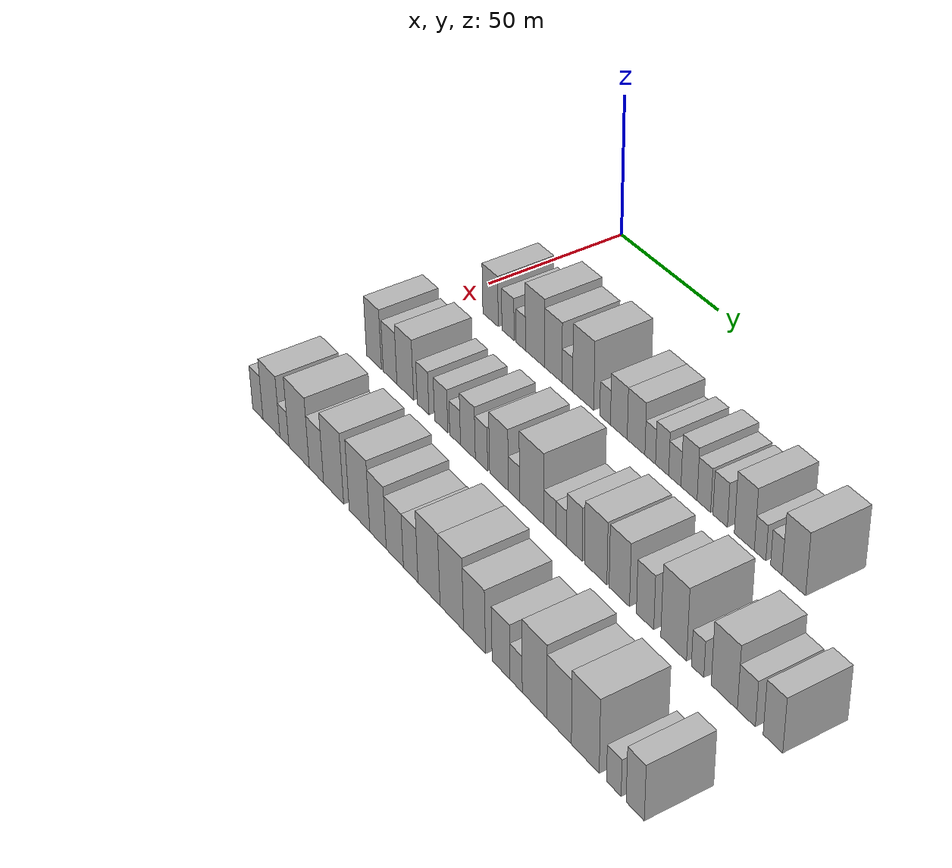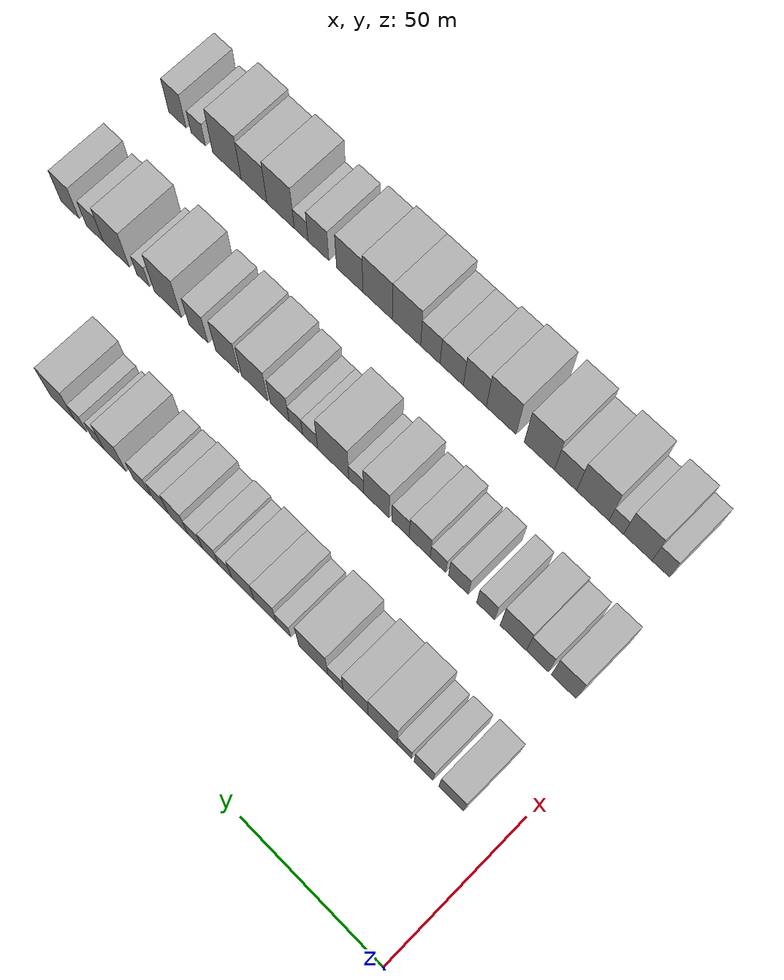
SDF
<sdf version="1.6">
 <world name="default">
  <model name="building_47">
   <static>1</static>
   <pose>50.0000 16.3167 0 0.000000 0.000000 0.000000</pose>
   <link name="link">
    <pose>0 0 9.00 0 0 0</pose>
    <collision name="collision"><geometry><box><size>20.0000 8.5062 18.0000</size></box></geometry></collision>
    <visual name="visual">
     <cast_shadows>0</cast_shadows>
     <geometry><box><size>20.0000 8.5062 18.0000</size></box></geometry>
     <material>
      <script>
       <uri>model://HANNAS_wall/materials/scripts</uri>
       <uri>model://HANNAS_wall/materials/textures</uri>
       <name>vrc/HANNAS_wall</name>
      </script>
     </material>
    </visual>
   </link>
  </model>
  <model name="building_48">
   <static>1</static>
   <pose>50.0000 25.8749 0 0.000000 0.000000 0.000000</pose>
   <link name="link">
    <pose>0 0 7.50 0 0 0</pose>
    <collision name="collision"><geometry><box><size>20.0000 6.6102 15.0000</size></box></geometry></collision>
    <visual name="visual">
     <cast_shadows>0</cast_shadows>
     <geometry><box><size>20.0000 6.6102 15.0000</size></box></geometry>
     <material>
      <script>
       <uri>model://HANNAS_wall/materials/scripts</uri>
       <uri>model://HANNAS_wall/materials/textures</uri>
       <name>vrc/HANNAS_wall</name>
      </script>
     </material>
    </visual>
   </link>
  </model>
  <model name="building_49">
   <static>1</static>
   <pose>50.0000 32.7128 0 0.000000 0.000000 0.000000</pose>
   <link name="link">
    <pose>0 0 6.00 0 0 0</pose>
    <collision name="collision"><geometry><box><size>20.0000 5.0658 12.0000</size></box></geometry></collision>
    <visual name="visual">
     <cast_shadows>0</cast_shadows>
     <geometry><box><size>20.0000 5.0658 12.0000</size></box></geometry>
     <material>
      <script>
       <uri>model://HANNAS_wall/materials/scripts</uri>
       <uri>model://HANNAS_wall/materials/textures</uri>
       <name>vrc/HANNAS_wall</name>
      </script>
     </material>
    </visual>
   </link>
  </model>
  <model name="building_50">
   <static>1</static>
   <pose>50.0000 40.3351 0 0.000000 0.000000 0.000000</pose>
   <link name="link">
    <pose>0 0 12.00 0 0 0</pose>
    <collision name="collision"><geometry><box><size>20.0000 10.1788 24.0000</size></box></geometry></collision>
    <visual name="visual">
     <cast_shadows>0</cast_shadows>
     <geometry><box><size>20.0000 10.1788 24.0000</size></box></geometry>
     <material>
      <script>
       <uri>model://HANNAS_wall/materials/scripts</uri>
       <uri>model://HANNAS_wall/materials/textures</uri>
       <name>vrc/HANNAS_wall</name>
      </script>
     </material>
    </visual>
   </link>
  </model>
  <model name="building_51">
   <static>1</static>
   <pose>50.0000 49.9191 0 0.000000 0.000000 0.000000</pose>
   <link name="link">
    <pose>0 0 10.50 0 0 0</pose>
    <collision name="collision"><geometry><box><size>20.0000 8.9892 21.0000</size></box></geometry></collision>
    <visual name="visual">
     <cast_shadows>0</cast_shadows>
     <geometry><box><size>20.0000 8.9892 21.0000</size></box></geometry>
     <material>
      <script>
       <uri>model://HANNAS_wall/materials/scripts</uri>
       <uri>model://HANNAS_wall/materials/textures</uri>
       <name>vrc/HANNAS_wall</name>
      </script>
     </material>
    </visual>
   </link>
  </model>
  <model name="building_52">
   <static>1</static>
   <pose>50.0000 57.1125 0 0.000000 0.000000 0.000000</pose>
   <link name="link">
    <pose>0 0 6.00 0 0 0</pose>
    <collision name="collision"><geometry><box><size>20.0000 5.3975 12.0000</size></box></geometry></collision>
    <visual name="visual">
     <cast_shadows>0</cast_shadows>
     <geometry><box><size>20.0000 5.3975 12.0000</size></box></geometry>
     <material>
      <script>
       <uri>model://HANNAS_wall/materials/scripts</uri>
       <uri>model://HANNAS_wall/materials/textures</uri>
       <name>vrc/HANNAS_wall</name>
      </script>
     </material>
    </visual>
   </link>
  </model>
  <model name="building_53">
   <static>1</static>
   <pose>50.0000 65.1213 0 0.000000 0.000000 0.000000</pose>
   <link name="link">
    <pose>0 0 12.00 0 0 0</pose>
    <collision name="collision"><geometry><box><size>20.0000 10.6201 24.0000</size></box></geometry></collision>
    <visual name="visual">
     <cast_shadows>0</cast_shadows>
     <geometry><box><size>20.0000 10.6201 24.0000</size></box></geometry>
     <material>
      <script>
       <uri>model://HANNAS_wall/materials/scripts</uri>
       <uri>model://HANNAS_wall/materials/textures</uri>
       <name>vrc/HANNAS_wall</name>
      </script>
     </material>
    </visual>
   </link>
  </model>
  <model name="building_54">
   <static>1</static>
   <pose>50.0000 76.0297 0 0.000000 0.000000 0.000000</pose>
   <link name="link">
    <pose>0 0 6.00 0 0 0</pose>
    <collision name="collision"><geometry><box><size>20.0000 5.1967 12.0000</size></box></geometry></collision>
    <visual name="visual">
     <cast_shadows>0</cast_shadows>
     <geometry><box><size>20.0000 5.1967 12.0000</size></box></geometry>
     <material>
      <script>
       <uri>model://HANNAS_wall/materials/scripts</uri>
       <uri>model://HANNAS_wall/materials/textures</uri>
       <name>vrc/HANNAS_wall</name>
      </script>
     </material>
    </visual>
   </link>
  </model>
  <model name="building_55">
   <static>1</static>
   <pose>50.0000 82.6907 0 0.000000 0.000000 0.000000</pose>
   <link name="link">
    <pose>0 0 9.00 0 0 0</pose>
    <collision name="collision"><geometry><box><size>20.0000 8.1251 18.0000</size></box></geometry></collision>
    <visual name="visual">
     <cast_shadows>0</cast_shadows>
     <geometry><box><size>20.0000 8.1251 18.0000</size></box></geometry>
     <material>
      <script>
       <uri>model://HANNAS_wall/materials/scripts</uri>
       <uri>model://HANNAS_wall/materials/textures</uri>
       <name>vrc/HANNAS_wall</name>
      </script>
     </material>
    </visual>
   </link>
  </model>
  <model name="building_56">
   <static>1</static>
   <pose>50.0000 90.9784 0 0.000000 0.000000 0.000000</pose>
   <link name="link">
    <pose>0 0 9.00 0 0 0</pose>
    <collision name="collision"><geometry><box><size>20.0000 8.4503 18.0000</size></box></geometry></collision>
    <visual name="visual">
     <cast_shadows>0</cast_shadows>
     <geometry><box><size>20.0000 8.4503 18.0000</size></box></geometry>
     <material>
      <script>
       <uri>model://HANNAS_wall/materials/scripts</uri>
       <uri>model://HANNAS_wall/materials/textures</uri>
       <name>vrc/HANNAS_wall</name>
      </script>
     </material>
    </visual>
   </link>
  </model>
  <model name="building_57">
   <static>1</static>
   <pose>50.0000 97.7002 0 0.000000 0.000000 0.000000</pose>
   <link name="link">
    <pose>0 0 6.00 0 0 0</pose>
    <collision name="collision"><geometry><box><size>20.0000 4.9932 12.0000</size></box></geometry></collision>
    <visual name="visual">
     <cast_shadows>0</cast_shadows>
     <geometry><box><size>20.0000 4.9932 12.0000</size></box></geometry>
     <material>
      <script>
       <uri>model://HANNAS_wall/materials/scripts</uri>
       <uri>model://HANNAS_wall/materials/textures</uri>
       <name>vrc/HANNAS_wall</name>
      </script>
     </material>
    </visual>
   </link>
  </model>
  <model name="building_58">
   <static>1</static>
   <pose>50.0000 103.2373 0 0.000000 0.000000 0.000000</pose>
   <link name="link">
    <pose>0 0 7.50 0 0 0</pose>
    <collision name="collision"><geometry><box><size>20.0000 6.0810 15.0000</size></box></geometry></collision>
    <visual name="visual">
     <cast_shadows>0</cast_shadows>
     <geometry><box><size>20.0000 6.0810 15.0000</size></box></geometry>
     <material>
      <script>
       <uri>model://HANNAS_wall/materials/scripts</uri>
       <uri>model://HANNAS_wall/materials/textures</uri>
       <name>vrc/HANNAS_wall</name>
      </script>
     </material>
    </visual>
   </link>
  </model>
  <model name="building_59">
   <static>1</static>
   <pose>50.0000 109.1245 0 0.000000 0.000000 0.000000</pose>
   <link name="link">
    <pose>0 0 6.00 0 0 0</pose>
    <collision name="collision"><geometry><box><size>20.0000 5.6933 12.0000</size></box></geometry></collision>
    <visual name="visual">
     <cast_shadows>0</cast_shadows>
     <geometry><box><size>20.0000 5.6933 12.0000</size></box></geometry>
     <material>
      <script>
       <uri>model://HANNAS_wall/materials/scripts</uri>
       <uri>model://HANNAS_wall/materials/textures</uri>
       <name>vrc/HANNAS_wall</name>
      </script>
     </material>
    </visual>
   </link>
  </model>
  <model name="building_60">
   <static>1</static>
   <pose>50.0000 115.6176 0 0.000000 0.000000 0.000000</pose>
   <link name="link">
    <pose>0 0 9.00 0 0 0</pose>
    <collision name="collision"><geometry><box><size>20.0000 7.2929 18.0000</size></box></geometry></collision>
    <visual name="visual">
     <cast_shadows>0</cast_shadows>
     <geometry><box><size>20.0000 7.2929 18.0000</size></box></geometry>
     <material>
      <script>
       <uri>model://HANNAS_wall/materials/scripts</uri>
       <uri>model://HANNAS_wall/materials/textures</uri>
       <name>vrc/HANNAS_wall</name>
      </script>
     </material>
    </visual>
   </link>
  </model>
  <model name="building_61">
   <static>1</static>
   <pose>50.0000 122.2916 0 0.000000 0.000000 0.000000</pose>
   <link name="link">
    <pose>0 0 7.50 0 0 0</pose>
    <collision name="collision"><geometry><box><size>20.0000 6.0552 15.0000</size></box></geometry></collision>
    <visual name="visual">
     <cast_shadows>0</cast_shadows>
     <geometry><box><size>20.0000 6.0552 15.0000</size></box></geometry>
     <material>
      <script>
       <uri>model://HANNAS_wall/materials/scripts</uri>
       <uri>model://HANNAS_wall/materials/textures</uri>
       <name>vrc/HANNAS_wall</name>
      </script>
     </material>
    </visual>
   </link>
  </model>
  <model name="building_62">
   <static>1</static>
   <pose>50.0000 129.5184 0 0.000000 0.000000 0.000000</pose>
   <link name="link">
    <pose>0 0 7.50 0 0 0</pose>
    <collision name="collision"><geometry><box><size>20.0000 6.3985 15.0000</size></box></geometry></collision>
    <visual name="visual">
     <cast_shadows>0</cast_shadows>
     <geometry><box><size>20.0000 6.3985 15.0000</size></box></geometry>
     <material>
      <script>
       <uri>model://HANNAS_wall/materials/scripts</uri>
       <uri>model://HANNAS_wall/materials/textures</uri>
       <name>vrc/HANNAS_wall</name>
      </script>
     </material>
    </visual>
   </link>
  </model>
  <model name="building_63">
   <static>1</static>
   <pose>50.0000 140.0337 0 0.000000 0.000000 0.000000</pose>
   <link name="link">
    <pose>0 0 10.50 0 0 0</pose>
    <collision name="collision"><geometry><box><size>20.0000 8.6320 21.0000</size></box></geometry></collision>
    <visual name="visual">
     <cast_shadows>0</cast_shadows>
     <geometry><box><size>20.0000 8.6320 21.0000</size></box></geometry>
     <material>
      <script>
       <uri>model://HANNAS_wall/materials/scripts</uri>
       <uri>model://HANNAS_wall/materials/textures</uri>
       <name>vrc/HANNAS_wall</name>
      </script>
     </material>
    </visual>
   </link>
  </model>
  <model name="building_64">
   <static>1</static>
   <pose>50.0000 146.7774 0 0.000000 0.000000 0.000000</pose>
   <link name="link">
    <pose>0 0 6.00 0 0 0</pose>
    <collision name="collision"><geometry><box><size>20.0000 4.8555 12.0000</size></box></geometry></collision>
    <visual name="visual">
     <cast_shadows>0</cast_shadows>
     <geometry><box><size>20.0000 4.8555 12.0000</size></box></geometry>
     <material>
      <script>
       <uri>model://HANNAS_wall/materials/scripts</uri>
       <uri>model://HANNAS_wall/materials/textures</uri>
       <name>vrc/HANNAS_wall</name>
      </script>
     </material>
    </visual>
   </link>
  </model>
  <model name="building_65">
   <static>1</static>
   <pose>50.0000 153.6063 0 0.000000 0.000000 0.000000</pose>
   <link name="link">
    <pose>0 0 6.00 0 0 0</pose>
    <collision name="collision"><geometry><box><size>20.0000 4.8023 12.0000</size></box></geometry></collision>
    <visual name="visual">
     <cast_shadows>0</cast_shadows>
     <geometry><box><size>20.0000 4.8023 12.0000</size></box></geometry>
     <material>
      <script>
       <uri>model://HANNAS_wall/materials/scripts</uri>
       <uri>model://HANNAS_wall/materials/textures</uri>
       <name>vrc/HANNAS_wall</name>
      </script>
     </material>
    </visual>
   </link>
  </model>
  <model name="building_66">
   <static>1</static>
   <pose>50.0000 160.8620 0 0.000000 0.000000 0.000000</pose>
   <link name="link">
    <pose>0 0 10.50 0 0 0</pose>
    <collision name="collision"><geometry><box><size>20.0000 9.7091 21.0000</size></box></geometry></collision>
    <visual name="visual">
     <cast_shadows>0</cast_shadows>
     <geometry><box><size>20.0000 9.7091 21.0000</size></box></geometry>
     <material>
      <script>
       <uri>model://HANNAS_wall/materials/scripts</uri>
       <uri>model://HANNAS_wall/materials/textures</uri>
       <name>vrc/HANNAS_wall</name>
      </script>
     </material>
    </visual>
   </link>
  </model>
  <model name="building_123">
   <static>1</static>
   <pose>90.0000 15.6042 0 0.000000 0.000000 0.000000</pose>
   <link name="link">
    <pose>0 0 10.50 0 0 0</pose>
    <collision name="collision"><geometry><box><size>20.0000 8.5615 21.0000</size></box></geometry></collision>
    <visual name="visual">
     <cast_shadows>0</cast_shadows>
     <geometry><box><size>20.0000 8.5615 21.0000</size></box></geometry>
     <material>
      <script>
       <uri>model://HANNAS_wall/materials/scripts</uri>
       <uri>model://HANNAS_wall/materials/textures</uri>
       <name>vrc/HANNAS_wall</name>
      </script>
     </material>
    </visual>
   </link>
  </model>
  <model name="building_124">
   <static>1</static>
   <pose>90.0000 24.7256 0 0.000000 0.000000 0.000000</pose>
   <link name="link">
    <pose>0 0 9.00 0 0 0</pose>
    <collision name="collision"><geometry><box><size>20.0000 7.6813 18.0000</size></box></geometry></collision>
    <visual name="visual">
     <cast_shadows>0</cast_shadows>
     <geometry><box><size>20.0000 7.6813 18.0000</size></box></geometry>
     <material>
      <script>
       <uri>model://HANNAS_wall/materials/scripts</uri>
       <uri>model://HANNAS_wall/materials/textures</uri>
       <name>vrc/HANNAS_wall</name>
      </script>
     </material>
    </visual>
   </link>
  </model>
  <model name="building_125">
   <static>1</static>
   <pose>90.0000 33.2088 0 0.000000 0.000000 0.000000</pose>
   <link name="link">
    <pose>0 0 10.50 0 0 0</pose>
    <collision name="collision"><geometry><box><size>20.0000 9.2850 21.0000</size></box></geometry></collision>
    <visual name="visual">
     <cast_shadows>0</cast_shadows>
     <geometry><box><size>20.0000 9.2850 21.0000</size></box></geometry>
     <material>
      <script>
       <uri>model://HANNAS_wall/materials/scripts</uri>
       <uri>model://HANNAS_wall/materials/textures</uri>
       <name>vrc/HANNAS_wall</name>
      </script>
     </material>
    </visual>
   </link>
  </model>
  <model name="building_126">
   <static>1</static>
   <pose>90.0000 43.0265 0 0.000000 0.000000 0.000000</pose>
   <link name="link">
    <pose>0 0 7.50 0 0 0</pose>
    <collision name="collision"><geometry><box><size>20.0000 6.3505 15.0000</size></box></geometry></collision>
    <visual name="visual">
     <cast_shadows>0</cast_shadows>
     <geometry><box><size>20.0000 6.3505 15.0000</size></box></geometry>
     <material>
      <script>
       <uri>model://HANNAS_wall/materials/scripts</uri>
       <uri>model://HANNAS_wall/materials/textures</uri>
       <name>vrc/HANNAS_wall</name>
      </script>
     </material>
    </visual>
   </link>
  </model>
  <model name="building_127">
   <static>1</static>
   <pose>90.0000 52.7526 0 0.000000 0.000000 0.000000</pose>
   <link name="link">
    <pose>0 0 7.50 0 0 0</pose>
    <collision name="collision"><geometry><box><size>20.0000 7.1017 15.0000</size></box></geometry></collision>
    <visual name="visual">
     <cast_shadows>0</cast_shadows>
     <geometry><box><size>20.0000 7.1017 15.0000</size></box></geometry>
     <material>
      <script>
       <uri>model://HANNAS_wall/materials/scripts</uri>
       <uri>model://HANNAS_wall/materials/textures</uri>
       <name>vrc/HANNAS_wall</name>
      </script>
     </material>
    </visual>
   </link>
  </model>
  <model name="building_128">
   <static>1</static>
   <pose>90.0000 60.1298 0 0.000000 0.000000 0.000000</pose>
   <link name="link">
    <pose>0 0 6.00 0 0 0</pose>
    <collision name="collision"><geometry><box><size>20.0000 5.6526 12.0000</size></box></geometry></collision>
    <visual name="visual">
     <cast_shadows>0</cast_shadows>
     <geometry><box><size>20.0000 5.6526 12.0000</size></box></geometry>
     <material>
      <script>
       <uri>model://HANNAS_wall/materials/scripts</uri>
       <uri>model://HANNAS_wall/materials/textures</uri>
       <name>vrc/HANNAS_wall</name>
      </script>
     </material>
    </visual>
   </link>
  </model>
  <model name="building_129">
   <static>1</static>
   <pose>90.0000 66.7965 0 0.000000 0.000000 0.000000</pose>
   <link name="link">
    <pose>0 0 9.00 0 0 0</pose>
    <collision name="collision"><geometry><box><size>20.0000 7.6807 18.0000</size></box></geometry></collision>
    <visual name="visual">
     <cast_shadows>0</cast_shadows>
     <geometry><box><size>20.0000 7.6807 18.0000</size></box></geometry>
     <material>
      <script>
       <uri>model://HANNAS_wall/materials/scripts</uri>
       <uri>model://HANNAS_wall/materials/textures</uri>
       <name>vrc/HANNAS_wall</name>
      </script>
     </material>
    </visual>
   </link>
  </model>
  <model name="building_130">
   <static>1</static>
   <pose>90.0000 73.7852 0 0.000000 0.000000 0.000000</pose>
   <link name="link">
    <pose>0 0 7.50 0 0 0</pose>
    <collision name="collision"><geometry><box><size>20.0000 6.2966 15.0000</size></box></geometry></collision>
    <visual name="visual">
     <cast_shadows>0</cast_shadows>
     <geometry><box><size>20.0000 6.2966 15.0000</size></box></geometry>
     <material>
      <script>
       <uri>model://HANNAS_wall/materials/scripts</uri>
       <uri>model://HANNAS_wall/materials/textures</uri>
       <name>vrc/HANNAS_wall</name>
      </script>
     </material>
    </visual>
   </link>
  </model>
  <model name="building_131">
   <static>1</static>
   <pose>90.0000 82.6418 0 0.000000 0.000000 0.000000</pose>
   <link name="link">
    <pose>0 0 10.50 0 0 0</pose>
    <collision name="collision"><geometry><box><size>20.0000 9.4166 21.0000</size></box></geometry></collision>
    <visual name="visual">
     <cast_shadows>0</cast_shadows>
     <geometry><box><size>20.0000 9.4166 21.0000</size></box></geometry>
     <material>
      <script>
       <uri>model://HANNAS_wall/materials/scripts</uri>
       <uri>model://HANNAS_wall/materials/textures</uri>
       <name>vrc/HANNAS_wall</name>
      </script>
     </material>
    </visual>
   </link>
  </model>
  <model name="building_132">
   <static>1</static>
   <pose>90.0000 90.1141 0 0.000000 0.000000 0.000000</pose>
   <link name="link">
    <pose>0 0 6.00 0 0 0</pose>
    <collision name="collision"><geometry><box><size>20.0000 5.5281 12.0000</size></box></geometry></collision>
    <visual name="visual">
     <cast_shadows>0</cast_shadows>
     <geometry><box><size>20.0000 5.5281 12.0000</size></box></geometry>
     <material>
      <script>
       <uri>model://HANNAS_wall/materials/scripts</uri>
       <uri>model://HANNAS_wall/materials/textures</uri>
       <name>vrc/HANNAS_wall</name>
      </script>
     </material>
    </visual>
   </link>
  </model>
  <model name="building_133">
   <static>1</static>
   <pose>90.0000 98.7152 0 0.000000 0.000000 0.000000</pose>
   <link name="link">
    <pose>0 0 12.00 0 0 0</pose>
    <collision name="collision"><geometry><box><size>20.0000 11.6741 24.0000</size></box></geometry></collision>
    <visual name="visual">
     <cast_shadows>0</cast_shadows>
     <geometry><box><size>20.0000 11.6741 24.0000</size></box></geometry>
     <material>
      <script>
       <uri>model://HANNAS_wall/materials/scripts</uri>
       <uri>model://HANNAS_wall/materials/textures</uri>
       <name>vrc/HANNAS_wall</name>
      </script>
     </material>
    </visual>
   </link>
  </model>
  <model name="building_134">
   <static>1</static>
   <pose>90.0000 107.4254 0 0.000000 0.000000 0.000000</pose>
   <link name="link">
    <pose>0 0 6.00 0 0 0</pose>
    <collision name="collision"><geometry><box><size>20.0000 5.7463 12.0000</size></box></geometry></collision>
    <visual name="visual">
     <cast_shadows>0</cast_shadows>
     <geometry><box><size>20.0000 5.7463 12.0000</size></box></geometry>
     <material>
      <script>
       <uri>model://HANNAS_wall/materials/scripts</uri>
       <uri>model://HANNAS_wall/materials/textures</uri>
       <name>vrc/HANNAS_wall</name>
      </script>
     </material>
    </visual>
   </link>
  </model>
  <model name="building_135">
   <static>1</static>
   <pose>90.0000 112.8617 0 0.000000 0.000000 0.000000</pose>
   <link name="link">
    <pose>0 0 6.00 0 0 0</pose>
    <collision name="collision"><geometry><box><size>20.0000 5.1262 12.0000</size></box></geometry></collision>
    <visual name="visual">
     <cast_shadows>0</cast_shadows>
     <geometry><box><size>20.0000 5.1262 12.0000</size></box></geometry>
     <material>
      <script>
       <uri>model://HANNAS_wall/materials/scripts</uri>
       <uri>model://HANNAS_wall/materials/textures</uri>
       <name>vrc/HANNAS_wall</name>
      </script>
     </material>
    </visual>
   </link>
  </model>
  <model name="building_136">
   <static>1</static>
   <pose>90.0000 119.0274 0 0.000000 0.000000 0.000000</pose>
   <link name="link">
    <pose>0 0 9.00 0 0 0</pose>
    <collision name="collision"><geometry><box><size>20.0000 7.2053 18.0000</size></box></geometry></collision>
    <visual name="visual">
     <cast_shadows>0</cast_shadows>
     <geometry><box><size>20.0000 7.2053 18.0000</size></box></geometry>
     <material>
      <script>
       <uri>model://HANNAS_wall/materials/scripts</uri>
       <uri>model://HANNAS_wall/materials/textures</uri>
       <name>vrc/HANNAS_wall</name>
      </script>
     </material>
    </visual>
   </link>
  </model>
  <model name="building_137">
   <static>1</static>
   <pose>90.0000 128.7315 0 0.000000 0.000000 0.000000</pose>
   <link name="link">
    <pose>0 0 10.50 0 0 0</pose>
    <collision name="collision"><geometry><box><size>20.0000 10.2028 21.0000</size></box></geometry></collision>
    <visual name="visual">
     <cast_shadows>0</cast_shadows>
     <geometry><box><size>20.0000 10.2028 21.0000</size></box></geometry>
     <material>
      <script>
       <uri>model://HANNAS_wall/materials/scripts</uri>
       <uri>model://HANNAS_wall/materials/textures</uri>
       <name>vrc/HANNAS_wall</name>
      </script>
     </material>
    </visual>
   </link>
  </model>
  <model name="building_138">
   <static>1</static>
   <pose>90.0000 139.3667 0 0.000000 0.000000 0.000000</pose>
   <link name="link">
    <pose>0 0 10.50 0 0 0</pose>
    <collision name="collision"><geometry><box><size>20.0000 9.0676 21.0000</size></box></geometry></collision>
    <visual name="visual">
     <cast_shadows>0</cast_shadows>
     <geometry><box><size>20.0000 9.0676 21.0000</size></box></geometry>
     <material>
      <script>
       <uri>model://HANNAS_wall/materials/scripts</uri>
       <uri>model://HANNAS_wall/materials/textures</uri>
       <name>vrc/HANNAS_wall</name>
      </script>
     </material>
    </visual>
   </link>
  </model>
  <model name="building_139">
   <static>1</static>
   <pose>90.0000 150.6617 0 0.000000 0.000000 0.000000</pose>
   <link name="link">
    <pose>0 0 9.00 0 0 0</pose>
    <collision name="collision"><geometry><box><size>20.0000 7.5224 18.0000</size></box></geometry></collision>
    <visual name="visual">
     <cast_shadows>0</cast_shadows>
     <geometry><box><size>20.0000 7.5224 18.0000</size></box></geometry>
     <material>
      <script>
       <uri>model://HANNAS_wall/materials/scripts</uri>
       <uri>model://HANNAS_wall/materials/textures</uri>
       <name>vrc/HANNAS_wall</name>
      </script>
     </material>
    </visual>
   </link>
  </model>
  <model name="building_140">
   <static>1</static>
   <pose>90.0000 162.8530 0 0.000000 0.000000 0.000000</pose>
   <link name="link">
    <pose>0 0 12.00 0 0 0</pose>
    <collision name="collision"><geometry><box><size>20.0000 10.8601 24.0000</size></box></geometry></collision>
    <visual name="visual">
     <cast_shadows>0</cast_shadows>
     <geometry><box><size>20.0000 10.8601 24.0000</size></box></geometry>
     <material>
      <script>
       <uri>model://HANNAS_wall/materials/scripts</uri>
       <uri>model://HANNAS_wall/materials/textures</uri>
       <name>vrc/HANNAS_wall</name>
      </script>
     </material>
    </visual>
   </link>
  </model>
  <model name="building_141">
   <static>1</static>
   <pose>90.0000 172.8470 0 0.000000 0.000000 0.000000</pose>
   <link name="link">
    <pose>0 0 6.00 0 0 0</pose>
    <collision name="collision"><geometry><box><size>20.0000 5.1280 12.0000</size></box></geometry></collision>
    <visual name="visual">
     <cast_shadows>0</cast_shadows>
     <geometry><box><size>20.0000 5.1280 12.0000</size></box></geometry>
     <material>
      <script>
       <uri>model://HANNAS_wall/materials/scripts</uri>
       <uri>model://HANNAS_wall/materials/textures</uri>
       <name>vrc/HANNAS_wall</name>
      </script>
     </material>
    </visual>
   </link>
  </model>
  <model name="building_142">
   <static>1</static>
   <pose>90.0000 183.6603 0 0.000000 0.000000 0.000000</pose>
   <link name="link">
    <pose>0 0 10.50 0 0 0</pose>
    <collision name="collision"><geometry><box><size>20.0000 10.4986 21.0000</size></box></geometry></collision>
    <visual name="visual">
     <cast_shadows>0</cast_shadows>
     <geometry><box><size>20.0000 10.4986 21.0000</size></box></geometry>
     <material>
      <script>
       <uri>model://HANNAS_wall/materials/scripts</uri>
       <uri>model://HANNAS_wall/materials/textures</uri>
       <name>vrc/HANNAS_wall</name>
      </script>
     </material>
    </visual>
   </link>
  </model>
  <model name="building_143">
   <static>1</static>
   <pose>90.0000 192.4569 0 0.000000 0.000000 0.000000</pose>
   <link name="link">
    <pose>0 0 7.50 0 0 0</pose>
    <collision name="collision"><geometry><box><size>20.0000 7.0944 15.0000</size></box></geometry></collision>
    <visual name="visual">
     <cast_shadows>0</cast_shadows>
     <geometry><box><size>20.0000 7.0944 15.0000</size></box></geometry>
     <material>
      <script>
       <uri>model://HANNAS_wall/materials/scripts</uri>
       <uri>model://HANNAS_wall/materials/textures</uri>
       <name>vrc/HANNAS_wall</name>
      </script>
     </material>
    </visual>
   </link>
  </model>
  <model name="building_144">
   <static>1</static>
   <pose>90.0000 202.7760 0 0.000000 0.000000 0.000000</pose>
   <link name="link">
    <pose>0 0 9.00 0 0 0</pose>
    <collision name="collision"><geometry><box><size>20.0000 7.5438 18.0000</size></box></geometry></collision>
    <visual name="visual">
     <cast_shadows>0</cast_shadows>
     <geometry><box><size>20.0000 7.5438 18.0000</size></box></geometry>
     <material>
      <script>
       <uri>model://HANNAS_wall/materials/scripts</uri>
       <uri>model://HANNAS_wall/materials/textures</uri>
       <name>vrc/HANNAS_wall</name>
      </script>
     </material>
    </visual>
   </link>
  </model>
  <model name="building_207">
   <static>1</static>
   <pose>130.0000 18.7458 0 0.000000 0.000000 0.000000</pose>
   <link name="link">
    <pose>0 0 7.50 0 0 0</pose>
    <collision name="collision"><geometry><box><size>20.0000 6.1147 15.0000</size></box></geometry></collision>
    <visual name="visual">
     <cast_shadows>0</cast_shadows>
     <geometry><box><size>20.0000 6.1147 15.0000</size></box></geometry>
     <material>
      <script>
       <uri>model://HANNAS_wall/materials/scripts</uri>
       <uri>model://HANNAS_wall/materials/textures</uri>
       <name>vrc/HANNAS_wall</name>
      </script>
     </material>
    </visual>
   </link>
  </model>
  <model name="building_208">
   <static>1</static>
   <pose>130.0000 26.7826 0 0.000000 0.000000 0.000000</pose>
   <link name="link">
    <pose>0 0 10.50 0 0 0</pose>
    <collision name="collision"><geometry><box><size>20.0000 9.9588 21.0000</size></box></geometry></collision>
    <visual name="visual">
     <cast_shadows>0</cast_shadows>
     <geometry><box><size>20.0000 9.9588 21.0000</size></box></geometry>
     <material>
      <script>
       <uri>model://HANNAS_wall/materials/scripts</uri>
       <uri>model://HANNAS_wall/materials/textures</uri>
       <name>vrc/HANNAS_wall</name>
      </script>
     </material>
    </visual>
   </link>
  </model>
  <model name="building_209">
   <static>1</static>
   <pose>130.0000 34.3335 0 0.000000 0.000000 0.000000</pose>
   <link name="link">
    <pose>0 0 6.00 0 0 0</pose>
    <collision name="collision"><geometry><box><size>20.0000 5.1430 12.0000</size></box></geometry></collision>
    <visual name="visual">
     <cast_shadows>0</cast_shadows>
     <geometry><box><size>20.0000 5.1430 12.0000</size></box></geometry>
     <material>
      <script>
       <uri>model://HANNAS_wall/materials/scripts</uri>
       <uri>model://HANNAS_wall/materials/textures</uri>
       <name>vrc/HANNAS_wall</name>
      </script>
     </material>
    </visual>
   </link>
  </model>
  <model name="building_210">
   <static>1</static>
   <pose>130.0000 42.6757 0 0.000000 0.000000 0.000000</pose>
   <link name="link">
    <pose>0 0 12.00 0 0 0</pose>
    <collision name="collision"><geometry><box><size>20.0000 11.5415 24.0000</size></box></geometry></collision>
    <visual name="visual">
     <cast_shadows>0</cast_shadows>
     <geometry><box><size>20.0000 11.5415 24.0000</size></box></geometry>
     <material>
      <script>
       <uri>model://HANNAS_wall/materials/scripts</uri>
       <uri>model://HANNAS_wall/materials/textures</uri>
       <name>vrc/HANNAS_wall</name>
      </script>
     </material>
    </visual>
   </link>
  </model>
  <model name="building_211">
   <static>1</static>
   <pose>130.0000 52.4447 0 0.000000 0.000000 0.000000</pose>
   <link name="link">
    <pose>0 0 9.00 0 0 0</pose>
    <collision name="collision"><geometry><box><size>20.0000 7.9965 18.0000</size></box></geometry></collision>
    <visual name="visual">
     <cast_shadows>0</cast_shadows>
     <geometry><box><size>20.0000 7.9965 18.0000</size></box></geometry>
     <material>
      <script>
       <uri>model://HANNAS_wall/materials/scripts</uri>
       <uri>model://HANNAS_wall/materials/textures</uri>
       <name>vrc/HANNAS_wall</name>
      </script>
     </material>
    </visual>
   </link>
  </model>
  <model name="building_212">
   <static>1</static>
   <pose>130.0000 61.9065 0 0.000000 0.000000 0.000000</pose>
   <link name="link">
    <pose>0 0 12.00 0 0 0</pose>
    <collision name="collision"><geometry><box><size>20.0000 10.9272 24.0000</size></box></geometry></collision>
    <visual name="visual">
     <cast_shadows>0</cast_shadows>
     <geometry><box><size>20.0000 10.9272 24.0000</size></box></geometry>
     <material>
      <script>
       <uri>model://HANNAS_wall/materials/scripts</uri>
       <uri>model://HANNAS_wall/materials/textures</uri>
       <name>vrc/HANNAS_wall</name>
      </script>
     </material>
    </visual>
   </link>
  </model>
  <model name="building_213">
   <static>1</static>
   <pose>130.0000 75.8334 0 0.000000 0.000000 0.000000</pose>
   <link name="link">
    <pose>0 0 12.00 0 0 0</pose>
    <collision name="collision"><geometry><box><size>20.0000 10.9266 24.0000</size></box></geometry></collision>
    <visual name="visual">
     <cast_shadows>0</cast_shadows>
     <geometry><box><size>20.0000 10.9266 24.0000</size></box></geometry>
     <material>
      <script>
       <uri>model://HANNAS_wall/materials/scripts</uri>
       <uri>model://HANNAS_wall/materials/textures</uri>
       <name>vrc/HANNAS_wall</name>
      </script>
     </material>
    </visual>
   </link>
  </model>
  <model name="building_214">
   <static>1</static>
   <pose>130.0000 85.5474 0 0.000000 0.000000 0.000000</pose>
   <link name="link">
    <pose>0 0 10.50 0 0 0</pose>
    <collision name="collision"><geometry><box><size>20.0000 8.5014 21.0000</size></box></geometry></collision>
    <visual name="visual">
     <cast_shadows>0</cast_shadows>
     <geometry><box><size>20.0000 8.5014 21.0000</size></box></geometry>
     <material>
      <script>
       <uri>model://HANNAS_wall/materials/scripts</uri>
       <uri>model://HANNAS_wall/materials/textures</uri>
       <name>vrc/HANNAS_wall</name>
      </script>
     </material>
    </visual>
   </link>
  </model>
  <model name="building_215">
   <static>1</static>
   <pose>130.0000 94.1813 0 0.000000 0.000000 0.000000</pose>
   <link name="link">
    <pose>0 0 9.00 0 0 0</pose>
    <collision name="collision"><geometry><box><size>20.0000 8.7664 18.0000</size></box></geometry></collision>
    <visual name="visual">
     <cast_shadows>0</cast_shadows>
     <geometry><box><size>20.0000 8.7664 18.0000</size></box></geometry>
     <material>
      <script>
       <uri>model://HANNAS_wall/materials/scripts</uri>
       <uri>model://HANNAS_wall/materials/textures</uri>
       <name>vrc/HANNAS_wall</name>
      </script>
     </material>
    </visual>
   </link>
  </model>
  <model name="building_216">
   <static>1</static>
   <pose>130.0000 102.2150 0 0.000000 0.000000 0.000000</pose>
   <link name="link">
    <pose>0 0 9.00 0 0 0</pose>
    <collision name="collision"><geometry><box><size>20.0000 7.3010 18.0000</size></box></geometry></collision>
    <visual name="visual">
     <cast_shadows>0</cast_shadows>
     <geometry><box><size>20.0000 7.3010 18.0000</size></box></geometry>
     <material>
      <script>
       <uri>model://HANNAS_wall/materials/scripts</uri>
       <uri>model://HANNAS_wall/materials/textures</uri>
       <name>vrc/HANNAS_wall</name>
      </script>
     </material>
    </visual>
   </link>
  </model>
  <model name="building_217">
   <static>1</static>
   <pose>130.0000 111.2631 0 0.000000 0.000000 0.000000</pose>
   <link name="link">
    <pose>0 0 12.00 0 0 0</pose>
    <collision name="collision"><geometry><box><size>20.0000 10.7952 24.0000</size></box></geometry></collision>
    <visual name="visual">
     <cast_shadows>0</cast_shadows>
     <geometry><box><size>20.0000 10.7952 24.0000</size></box></geometry>
     <material>
      <script>
       <uri>model://HANNAS_wall/materials/scripts</uri>
       <uri>model://HANNAS_wall/materials/textures</uri>
       <name>vrc/HANNAS_wall</name>
      </script>
     </material>
    </visual>
   </link>
  </model>
  <model name="building_218">
   <static>1</static>
   <pose>130.0000 122.3094 0 0.000000 0.000000 0.000000</pose>
   <link name="link">
    <pose>0 0 12.00 0 0 0</pose>
    <collision name="collision"><geometry><box><size>20.0000 11.2975 24.0000</size></box></geometry></collision>
    <visual name="visual">
     <cast_shadows>0</cast_shadows>
     <geometry><box><size>20.0000 11.2975 24.0000</size></box></geometry>
     <material>
      <script>
       <uri>model://HANNAS_wall/materials/scripts</uri>
       <uri>model://HANNAS_wall/materials/textures</uri>
       <name>vrc/HANNAS_wall</name>
      </script>
     </material>
    </visual>
   </link>
  </model>
  <model name="building_219">
   <static>1</static>
   <pose>130.0000 133.0722 0 0.000000 0.000000 0.000000</pose>
   <link name="link">
    <pose>0 0 10.50 0 0 0</pose>
    <collision name="collision"><geometry><box><size>20.0000 10.2281 21.0000</size></box></geometry></collision>
    <visual name="visual">
     <cast_shadows>0</cast_shadows>
     <geometry><box><size>20.0000 10.2281 21.0000</size></box></geometry>
     <material>
      <script>
       <uri>model://HANNAS_wall/materials/scripts</uri>
       <uri>model://HANNAS_wall/materials/textures</uri>
       <name>vrc/HANNAS_wall</name>
      </script>
     </material>
    </visual>
   </link>
  </model>
  <model name="building_220">
   <static>1</static>
   <pose>130.0000 145.2518 0 0.000000 0.000000 0.000000</pose>
   <link name="link">
    <pose>0 0 9.00 0 0 0</pose>
    <collision name="collision"><geometry><box><size>20.0000 8.1311 18.0000</size></box></geometry></collision>
    <visual name="visual">
     <cast_shadows>0</cast_shadows>
     <geometry><box><size>20.0000 8.1311 18.0000</size></box></geometry>
     <material>
      <script>
       <uri>model://HANNAS_wall/materials/scripts</uri>
       <uri>model://HANNAS_wall/materials/textures</uri>
       <name>vrc/HANNAS_wall</name>
      </script>
     </material>
    </visual>
   </link>
  </model>
  <model name="building_221">
   <static>1</static>
   <pose>130.0000 152.0618 0 0.000000 0.000000 0.000000</pose>
   <link name="link">
    <pose>0 0 6.00 0 0 0</pose>
    <collision name="collision"><geometry><box><size>20.0000 5.4889 12.0000</size></box></geometry></collision>
    <visual name="visual">
     <cast_shadows>0</cast_shadows>
     <geometry><box><size>20.0000 5.4889 12.0000</size></box></geometry>
     <material>
      <script>
       <uri>model://HANNAS_wall/materials/scripts</uri>
       <uri>model://HANNAS_wall/materials/textures</uri>
       <name>vrc/HANNAS_wall</name>
      </script>
     </material>
    </visual>
   </link>
  </model>
  <model name="building_222">
   <static>1</static>
   <pose>130.0000 160.2685 0 0.000000 0.000000 0.000000</pose>
   <link name="link">
    <pose>0 0 12.00 0 0 0</pose>
    <collision name="collision"><geometry><box><size>20.0000 10.9245 24.0000</size></box></geometry></collision>
    <visual name="visual">
     <cast_shadows>0</cast_shadows>
     <geometry><box><size>20.0000 10.9245 24.0000</size></box></geometry>
     <material>
      <script>
       <uri>model://HANNAS_wall/materials/scripts</uri>
       <uri>model://HANNAS_wall/materials/textures</uri>
       <name>vrc/HANNAS_wall</name>
      </script>
     </material>
    </visual>
   </link>
  </model>
  <model name="building_223">
   <static>1</static>
   <pose>130.0000 170.9059 0 0.000000 0.000000 0.000000</pose>
   <link name="link">
    <pose>0 0 10.50 0 0 0</pose>
    <collision name="collision"><geometry><box><size>20.0000 10.3502 21.0000</size></box></geometry></collision>
    <visual name="visual">
     <cast_shadows>0</cast_shadows>
     <geometry><box><size>20.0000 10.3502 21.0000</size></box></geometry>
     <material>
      <script>
       <uri>model://HANNAS_wall/materials/scripts</uri>
       <uri>model://HANNAS_wall/materials/textures</uri>
       <name>vrc/HANNAS_wall</name>
      </script>
     </material>
    </visual>
   </link>
  </model>
  <model name="building_224">
   <static>1</static>
   <pose>130.0000 181.8763 0 0.000000 0.000000 0.000000</pose>
   <link name="link">
    <pose>0 0 12.00 0 0 0</pose>
    <collision name="collision"><geometry><box><size>20.0000 11.5905 24.0000</size></box></geometry></collision>
    <visual name="visual">
     <cast_shadows>0</cast_shadows>
     <geometry><box><size>20.0000 11.5905 24.0000</size></box></geometry>
     <material>
      <script>
       <uri>model://HANNAS_wall/materials/scripts</uri>
       <uri>model://HANNAS_wall/materials/textures</uri>
       <name>vrc/HANNAS_wall</name>
      </script>
     </material>
    </visual>
   </link>
  </model>
  <model name="building_225">
   <static>1</static>
   <pose>130.0000 193.6288 0 0.000000 0.000000 0.000000</pose>
   <link name="link">
    <pose>0 0 6.00 0 0 0</pose>
    <collision name="collision"><geometry><box><size>20.0000 5.9146 12.0000</size></box></geometry></collision>
    <visual name="visual">
     <cast_shadows>0</cast_shadows>
     <geometry><box><size>20.0000 5.9146 12.0000</size></box></geometry>
     <material>
      <script>
       <uri>model://HANNAS_wall/materials/scripts</uri>
       <uri>model://HANNAS_wall/materials/textures</uri>
       <name>vrc/HANNAS_wall</name>
      </script>
     </material>
    </visual>
   </link>
  </model>
  <model name="building_226">
   <static>1</static>
   <pose>130.0000 202.1899 0 0.000000 0.000000 0.000000</pose>
   <link name="link">
    <pose>0 0 9.00 0 0 0</pose>
    <collision name="collision"><geometry><box><size>20.0000 7.2078 18.0000</size></box></geometry></collision>
    <visual name="visual">
     <cast_shadows>0</cast_shadows>
     <geometry><box><size>20.0000 7.2078 18.0000</size></box></geometry>
     <material>
      <script>
       <uri>model://HANNAS_wall/materials/scripts</uri>
       <uri>model://HANNAS_wall/materials/textures</uri>
       <name>vrc/HANNAS_wall</name>
      </script>
     </material>
    </visual>
   </link>
  </model>
 </world>
</sdf>
